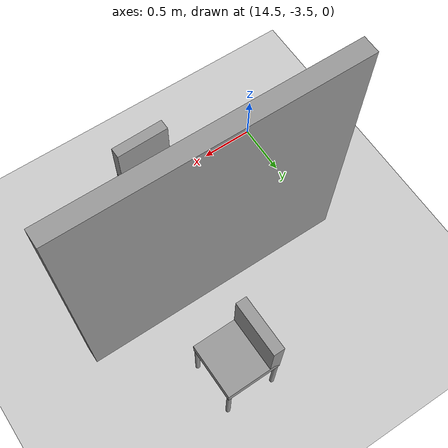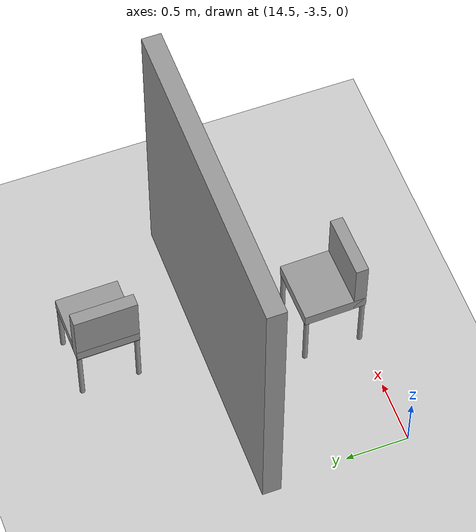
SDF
<sdf version="1.6">
 <world name="default">
  <model name="ground_plane">
   <static>1</static>
   <link name="link">
    <collision name="collision">
     <geometry><plane><normal>0 0 1</normal><size>100 100</size></plane></geometry>
     <surface>
      <contact><collide_bitmask>65535</collide_bitmask></contact>
      <friction><ode><mu>100</mu><mu2>50</mu2></ode></friction>
     </surface>
    </collision>
    <visual name="visual">
     <cast_shadows>0</cast_shadows>
     <geometry><plane><normal>0 0 1</normal><size>100 100</size></plane></geometry>
     <material>
      <script><uri>file://media/materials/scripts/gazebo.material</uri><name>Gazebo/Grey</name></script>
     </material>
    </visual>
   </link>
  </model>
  <model name="dunder_mifflin_scranton_full">
   <pose>4.5312 0.479645 0 0 -0 0</pose>
   <link name="Wall_41">
    <collision name="Wall_41_Collision">
     <geometry><box><size>2.5 0.15 2.5</size></box></geometry>
     <pose>0 0 1.25 0 -0 0</pose>
    </collision>
    <visual name="Wall_41_Visual">
     <pose>0 0 1.25 0 -0 0</pose>
     <geometry><box><size>2.5 0.15 2.5</size></box></geometry>
     <material>
      <script><uri>file://media/materials/scripts/gazebo.material</uri><name>Gazebo/Grey</name></script>
      <ambient>1 1 1 1</ambient>
     </material>
     <meta><layer>0</layer></meta>
    </visual>
    <pose>11.1549 -2.85065 0 0 -0 3.14159</pose>
   </link>
   <static>1</static>
  </model>
  <model name="chair_11">
   <link name="link_0">
    <inertial>
     <mass>1</mass>
     <inertia><ixx>0.145833</ixx><ixy>0</ixy><ixz>0</ixz><iyy>0.145833</iyy><iyz>0</iyz><izz>0.125</izz></inertia>
    </inertial>
    <pose>-0.23 -0.19667 -0.280001 0 -0 0</pose>
    <visual name="visual">
     <geometry><cylinder><radius>0.02</radius><length>0.5</length></cylinder></geometry>
     <material>
      <lighting>1</lighting>
      <script><uri>file://media/materials/scripts/gazebo.material</uri><name>Gazebo/Grey</name></script>
      <shader type="vertex"><normal_map>__default__</normal_map></shader>
      <ambient>0.3 0.3 0.3 1</ambient>
      <diffuse>0.7 0.7 0.7 1</diffuse>
      <specular>0.01 0.01 0.01 1</specular>
      <emissive>0 0 0 1</emissive>
     </material>
    </visual>
    <collision name="collision">
     <geometry><cylinder><radius>0.02</radius><length>0.5</length></cylinder></geometry>
     <surface>
      <friction>
       <ode><mu>1</mu><mu2>1</mu2><fdir1>0 0 0</fdir1><slip1>0</slip1><slip2>0</slip2></ode>
       <torsional>
        <coefficient>1</coefficient>
        <patch_radius>0</patch_radius>
        <surface_radius>0</surface_radius>
        <use_patch_radius>1</use_patch_radius>
        <ode><slip>0</slip></ode>
       </torsional>
      </friction>
      <bounce><restitution_coefficient>0</restitution_coefficient><threshold>1e+06</threshold></bounce>
      <contact>
       <collide_without_contact>0</collide_without_contact>
       <collide_without_contact_bitmask>1</collide_without_contact_bitmask>
       <collide_bitmask>1</collide_bitmask>
       <ode>
        <soft_cfm>0</soft_cfm>
        <soft_erp>0.2</soft_erp>
        <kp>1e+13</kp>
        <kd>1</kd>
        <max_vel>0.01</max_vel>
        <min_depth>0</min_depth>
       </ode>
       <bullet>
        <split_impulse>1</split_impulse>
        <split_impulse_penetration_threshold>-0.01</split_impulse_penetration_threshold>
        <soft_cfm>0</soft_cfm>
        <soft_erp>0.2</soft_erp>
        <kp>1e+13</kp>
        <kd>1</kd>
       </bullet>
      </contact>
     </surface>
    </collision>
   </link>
   <link name="link_0_clone">
    <inertial>
     <mass>1</mass>
     <inertia><ixx>0.145833</ixx><ixy>0</ixy><ixz>0</ixz><iyy>0.145833</iyy><iyz>0</iyz><izz>0.125</izz></inertia>
    </inertial>
    <pose>0.23 -0.19667 -0.280001 0 -0 0</pose>
    <visual name="visual">
     <geometry><cylinder><radius>0.02</radius><length>0.5</length></cylinder></geometry>
     <material>
      <lighting>1</lighting>
      <script><uri>file://media/materials/scripts/gazebo.material</uri><name>Gazebo/Grey</name></script>
      <shader type="vertex"><normal_map>__default__</normal_map></shader>
      <ambient>0.3 0.3 0.3 1</ambient>
      <diffuse>0.7 0.7 0.7 1</diffuse>
      <specular>0.01 0.01 0.01 1</specular>
      <emissive>0 0 0 1</emissive>
     </material>
    </visual>
    <collision name="collision">
     <geometry><cylinder><radius>0.02</radius><length>0.5</length></cylinder></geometry>
     <surface>
      <friction>
       <ode><mu>1</mu><mu2>1</mu2><fdir1>0 0 0</fdir1><slip1>0</slip1><slip2>0</slip2></ode>
       <torsional>
        <coefficient>1</coefficient>
        <patch_radius>0</patch_radius>
        <surface_radius>0</surface_radius>
        <use_patch_radius>1</use_patch_radius>
        <ode><slip>0</slip></ode>
       </torsional>
      </friction>
      <bounce><restitution_coefficient>0</restitution_coefficient><threshold>1e+06</threshold></bounce>
      <contact>
       <collide_without_contact>0</collide_without_contact>
       <collide_without_contact_bitmask>1</collide_without_contact_bitmask>
       <collide_bitmask>1</collide_bitmask>
       <ode>
        <soft_cfm>0</soft_cfm>
        <soft_erp>0.2</soft_erp>
        <kp>1e+13</kp>
        <kd>1</kd>
        <max_vel>0.01</max_vel>
        <min_depth>0</min_depth>
       </ode>
       <bullet>
        <split_impulse>1</split_impulse>
        <split_impulse_penetration_threshold>-0.01</split_impulse_penetration_threshold>
        <soft_cfm>0</soft_cfm>
        <soft_erp>0.2</soft_erp>
        <kp>1e+13</kp>
        <kd>1</kd>
       </bullet>
      </contact>
     </surface>
    </collision>
   </link>
   <link name="link_0_clone_0">
    <inertial>
     <mass>1</mass>
     <inertia><ixx>0.145833</ixx><ixy>0</ixy><ixz>0</ixz><iyy>0.145833</iyy><iyz>0</iyz><izz>0.125</izz></inertia>
    </inertial>
    <pose>0.23 0.26333 -0.280001 0 -0 0</pose>
    <visual name="visual">
     <geometry><cylinder><radius>0.02</radius><length>0.5</length></cylinder></geometry>
     <material>
      <lighting>1</lighting>
      <script><uri>file://media/materials/scripts/gazebo.material</uri><name>Gazebo/Grey</name></script>
      <shader type="vertex"><normal_map>__default__</normal_map></shader>
      <ambient>0.3 0.3 0.3 1</ambient>
      <diffuse>0.7 0.7 0.7 1</diffuse>
      <specular>0.01 0.01 0.01 1</specular>
      <emissive>0 0 0 1</emissive>
     </material>
    </visual>
    <collision name="collision">
     <geometry><cylinder><radius>0.02</radius><length>0.5</length></cylinder></geometry>
     <surface>
      <friction>
       <ode><mu>1</mu><mu2>1</mu2><fdir1>0 0 0</fdir1><slip1>0</slip1><slip2>0</slip2></ode>
       <torsional>
        <coefficient>1</coefficient>
        <patch_radius>0</patch_radius>
        <surface_radius>0</surface_radius>
        <use_patch_radius>1</use_patch_radius>
        <ode><slip>0</slip></ode>
       </torsional>
      </friction>
      <bounce><restitution_coefficient>0</restitution_coefficient><threshold>1e+06</threshold></bounce>
      <contact>
       <collide_without_contact>0</collide_without_contact>
       <collide_without_contact_bitmask>1</collide_without_contact_bitmask>
       <collide_bitmask>1</collide_bitmask>
       <ode>
        <soft_cfm>0</soft_cfm>
        <soft_erp>0.2</soft_erp>
        <kp>1e+13</kp>
        <kd>1</kd>
        <max_vel>0.01</max_vel>
        <min_depth>0</min_depth>
       </ode>
       <bullet>
        <split_impulse>1</split_impulse>
        <split_impulse_penetration_threshold>-0.01</split_impulse_penetration_threshold>
        <soft_cfm>0</soft_cfm>
        <soft_erp>0.2</soft_erp>
        <kp>1e+13</kp>
        <kd>1</kd>
       </bullet>
      </contact>
     </surface>
    </collision>
   </link>
   <link name="link_0_clone_1">
    <inertial>
     <mass>1</mass>
     <inertia><ixx>0.145833</ixx><ixy>0</ixy><ixz>0</ixz><iyy>0.145833</iyy><iyz>0</iyz><izz>0.125</izz></inertia>
    </inertial>
    <pose>-0.23 0.26333 -0.280001 0 -0 0</pose>
    <visual name="visual">
     <geometry><cylinder><radius>0.02</radius><length>0.5</length></cylinder></geometry>
     <material>
      <lighting>1</lighting>
      <script><uri>file://media/materials/scripts/gazebo.material</uri><name>Gazebo/Grey</name></script>
      <shader type="vertex"><normal_map>__default__</normal_map></shader>
      <ambient>0.3 0.3 0.3 1</ambient>
      <diffuse>0.7 0.7 0.7 1</diffuse>
      <specular>0.01 0.01 0.01 1</specular>
      <emissive>0 0 0 1</emissive>
     </material>
    </visual>
    <collision name="collision">
     <geometry><cylinder><radius>0.02</radius><length>0.5</length></cylinder></geometry>
     <surface>
      <friction>
       <ode><mu>1</mu><mu2>1</mu2><fdir1>0 0 0</fdir1><slip1>0</slip1><slip2>0</slip2></ode>
       <torsional>
        <coefficient>1</coefficient>
        <patch_radius>0</patch_radius>
        <surface_radius>0</surface_radius>
        <use_patch_radius>1</use_patch_radius>
        <ode><slip>0</slip></ode>
       </torsional>
      </friction>
      <bounce><restitution_coefficient>0</restitution_coefficient><threshold>1e+06</threshold></bounce>
      <contact>
       <collide_without_contact>0</collide_without_contact>
       <collide_without_contact_bitmask>1</collide_without_contact_bitmask>
       <collide_bitmask>1</collide_bitmask>
       <ode>
        <soft_cfm>0</soft_cfm>
        <soft_erp>0.2</soft_erp>
        <kp>1e+13</kp>
        <kd>1</kd>
        <max_vel>0.01</max_vel>
        <min_depth>0</min_depth>
       </ode>
       <bullet>
        <split_impulse>1</split_impulse>
        <split_impulse_penetration_threshold>-0.01</split_impulse_penetration_threshold>
        <soft_cfm>0</soft_cfm>
        <soft_erp>0.2</soft_erp>
        <kp>1e+13</kp>
        <kd>1</kd>
       </bullet>
      </contact>
     </surface>
    </collision>
   </link>
   <link name="link_2">
    <inertial>
     <mass>1</mass>
     <inertia>
      <ixx>0.166667</ixx>
      <ixy>0</ixy>
      <ixz>0</ixz>
      <iyy>0.166667</iyy>
      <iyz>0</iyz>
      <izz>0.166667</izz>
     </inertia>
    </inertial>
    <pose>0 0.03333 0.019999 0 -0 0</pose>
    <visual name="visual">
     <geometry><box><size>0.5 0.5 0.1</size></box></geometry>
     <material>
      <lighting>1</lighting>
      <script><uri>file://media/materials/scripts/gazebo.material</uri><name>Gazebo/Grey</name></script>
      <shader type="vertex"><normal_map>__default__</normal_map></shader>
      <ambient>0.3 0.3 0.3 1</ambient>
      <diffuse>0.7 0.7 0.7 1</diffuse>
      <specular>0.01 0.01 0.01 1</specular>
      <emissive>0 0 0 1</emissive>
     </material>
    </visual>
    <collision name="collision">
     <geometry><box><size>0.5 0.5 0.1</size></box></geometry>
     <surface>
      <friction>
       <ode><mu>1</mu><mu2>1</mu2><fdir1>0 0 0</fdir1><slip1>0</slip1><slip2>0</slip2></ode>
       <torsional>
        <coefficient>1</coefficient>
        <patch_radius>0</patch_radius>
        <surface_radius>0</surface_radius>
        <use_patch_radius>1</use_patch_radius>
        <ode><slip>0</slip></ode>
       </torsional>
      </friction>
      <bounce><restitution_coefficient>0</restitution_coefficient><threshold>1e+06</threshold></bounce>
      <contact>
       <collide_without_contact>0</collide_without_contact>
       <collide_without_contact_bitmask>1</collide_without_contact_bitmask>
       <collide_bitmask>1</collide_bitmask>
       <ode>
        <soft_cfm>0</soft_cfm>
        <soft_erp>0.2</soft_erp>
        <kp>1e+13</kp>
        <kd>1</kd>
        <max_vel>0.01</max_vel>
        <min_depth>0</min_depth>
       </ode>
       <bullet>
        <split_impulse>1</split_impulse>
        <split_impulse_penetration_threshold>-0.01</split_impulse_penetration_threshold>
        <soft_cfm>0</soft_cfm>
        <soft_erp>0.2</soft_erp>
        <kp>1e+13</kp>
        <kd>1</kd>
       </bullet>
      </contact>
     </surface>
    </collision>
   </link>
   <link name="link_2_clone">
    <inertial>
     <mass>1</mass>
     <inertia>
      <ixx>0.166667</ixx>
      <ixy>0</ixy>
      <ixz>0</ixz>
      <iyy>0.166667</iyy>
      <iyz>0</iyz>
      <izz>0.166667</izz>
     </inertia>
    </inertial>
    <pose>0 -0.166646 0.220004 1.5707 -0 0</pose>
    <visual name="visual">
     <geometry><box><size>0.5 0.5 0.1</size></box></geometry>
     <material>
      <lighting>1</lighting>
      <script><uri>file://media/materials/scripts/gazebo.material</uri><name>Gazebo/Grey</name></script>
      <shader type="vertex"><normal_map>__default__</normal_map></shader>
      <ambient>0.3 0.3 0.3 1</ambient>
      <diffuse>0.7 0.7 0.7 1</diffuse>
      <specular>0.01 0.01 0.01 1</specular>
      <emissive>0 0 0 1</emissive>
     </material>
    </visual>
    <collision name="collision">
     <geometry><box><size>0.5 0.5 0.1</size></box></geometry>
     <surface>
      <friction>
       <ode><mu>1</mu><mu2>1</mu2><fdir1>0 0 0</fdir1><slip1>0</slip1><slip2>0</slip2></ode>
       <torsional>
        <coefficient>1</coefficient>
        <patch_radius>0</patch_radius>
        <surface_radius>0</surface_radius>
        <use_patch_radius>1</use_patch_radius>
        <ode><slip>0</slip></ode>
       </torsional>
      </friction>
      <bounce><restitution_coefficient>0</restitution_coefficient><threshold>1e+06</threshold></bounce>
      <contact>
       <collide_without_contact>0</collide_without_contact>
       <collide_without_contact_bitmask>1</collide_without_contact_bitmask>
       <collide_bitmask>1</collide_bitmask>
       <ode>
        <soft_cfm>0</soft_cfm>
        <soft_erp>0.2</soft_erp>
        <kp>1e+13</kp>
        <kd>1</kd>
        <max_vel>0.01</max_vel>
        <min_depth>0</min_depth>
       </ode>
       <bullet>
        <split_impulse>1</split_impulse>
        <split_impulse_penetration_threshold>-0.01</split_impulse_penetration_threshold>
        <soft_cfm>0</soft_cfm>
        <soft_erp>0.2</soft_erp>
        <kp>1e+13</kp>
        <kd>1</kd>
       </bullet>
      </contact>
     </surface>
    </collision>
   </link>
   <joint name="link_0_clone_JOINT_2" type="fixed">
    <parent>link_2</parent>
    <child>link_0_clone</child>
    <physics>
     <ode><limit><cfm>0</cfm><erp>0.2</erp></limit><suspension><cfm>0</cfm><erp>0.2</erp></suspension></ode>
    </physics>
   </joint>
   <joint name="link_2_JOINT_1" type="fixed">
    <parent>link_2</parent>
    <child>link_0</child>
    <physics>
     <ode><limit><cfm>0</cfm><erp>0.2</erp></limit><suspension><cfm>0</cfm><erp>0.2</erp></suspension></ode>
    </physics>
   </joint>
   <joint name="link_2_JOINT_3" type="fixed">
    <parent>link_2</parent>
    <child>link_0_clone_0</child>
    <physics>
     <ode><limit><cfm>0</cfm><erp>0.2</erp></limit><suspension><cfm>0</cfm><erp>0.2</erp></suspension></ode>
    </physics>
   </joint>
   <joint name="link_2_JOINT_4" type="fixed">
    <parent>link_2</parent>
    <child>link_0_clone_1</child>
    <physics>
     <ode><limit><cfm>0</cfm><erp>0.2</erp></limit><suspension><cfm>0</cfm><erp>0.2</erp></suspension></ode>
    </physics>
   </joint>
   <joint name="link_2_JOINT_5" type="fixed">
    <parent>link_2</parent>
    <child>link_2_clone</child>
    <physics>
     <ode><limit><cfm>0</cfm><erp>0.2</erp></limit><suspension><cfm>0</cfm><erp>0.2</erp></suspension></ode>
    </physics>
   </joint>
   <static>0</static>
   <pose>15.6823 -3.29128 0.529996 0 -0 0.019875</pose>
  </model>
  <model name="chair_16">
   <link name="link_0">
    <inertial>
     <mass>1</mass>
     <inertia><ixx>0.145833</ixx><ixy>0</ixy><ixz>0</ixz><iyy>0.145833</iyy><iyz>0</iyz><izz>0.125</izz></inertia>
    </inertial>
    <pose>-0.23 -0.19667 -0.280001 0 -0 0</pose>
    <visual name="visual">
     <geometry><cylinder><radius>0.02</radius><length>0.5</length></cylinder></geometry>
     <material>
      <lighting>1</lighting>
      <script><uri>file://media/materials/scripts/gazebo.material</uri><name>Gazebo/Grey</name></script>
      <shader type="vertex"><normal_map>__default__</normal_map></shader>
      <ambient>0.3 0.3 0.3 1</ambient>
      <diffuse>0.7 0.7 0.7 1</diffuse>
      <specular>0.01 0.01 0.01 1</specular>
      <emissive>0 0 0 1</emissive>
     </material>
    </visual>
    <collision name="collision">
     <geometry><cylinder><radius>0.02</radius><length>0.5</length></cylinder></geometry>
     <surface>
      <friction>
       <ode><mu>1</mu><mu2>1</mu2><fdir1>0 0 0</fdir1><slip1>0</slip1><slip2>0</slip2></ode>
       <torsional>
        <coefficient>1</coefficient>
        <patch_radius>0</patch_radius>
        <surface_radius>0</surface_radius>
        <use_patch_radius>1</use_patch_radius>
        <ode><slip>0</slip></ode>
       </torsional>
      </friction>
      <bounce><restitution_coefficient>0</restitution_coefficient><threshold>1e+06</threshold></bounce>
      <contact>
       <collide_without_contact>0</collide_without_contact>
       <collide_without_contact_bitmask>1</collide_without_contact_bitmask>
       <collide_bitmask>1</collide_bitmask>
       <ode>
        <soft_cfm>0</soft_cfm>
        <soft_erp>0.2</soft_erp>
        <kp>1e+13</kp>
        <kd>1</kd>
        <max_vel>0.01</max_vel>
        <min_depth>0</min_depth>
       </ode>
       <bullet>
        <split_impulse>1</split_impulse>
        <split_impulse_penetration_threshold>-0.01</split_impulse_penetration_threshold>
        <soft_cfm>0</soft_cfm>
        <soft_erp>0.2</soft_erp>
        <kp>1e+13</kp>
        <kd>1</kd>
       </bullet>
      </contact>
     </surface>
    </collision>
   </link>
   <link name="link_0_clone">
    <inertial>
     <mass>1</mass>
     <inertia><ixx>0.145833</ixx><ixy>0</ixy><ixz>0</ixz><iyy>0.145833</iyy><iyz>0</iyz><izz>0.125</izz></inertia>
    </inertial>
    <pose>0.23 -0.19667 -0.280001 0 -0 0</pose>
    <visual name="visual">
     <geometry><cylinder><radius>0.02</radius><length>0.5</length></cylinder></geometry>
     <material>
      <lighting>1</lighting>
      <script><uri>file://media/materials/scripts/gazebo.material</uri><name>Gazebo/Grey</name></script>
      <shader type="vertex"><normal_map>__default__</normal_map></shader>
      <ambient>0.3 0.3 0.3 1</ambient>
      <diffuse>0.7 0.7 0.7 1</diffuse>
      <specular>0.01 0.01 0.01 1</specular>
      <emissive>0 0 0 1</emissive>
     </material>
    </visual>
    <collision name="collision">
     <geometry><cylinder><radius>0.02</radius><length>0.5</length></cylinder></geometry>
     <surface>
      <friction>
       <ode><mu>1</mu><mu2>1</mu2><fdir1>0 0 0</fdir1><slip1>0</slip1><slip2>0</slip2></ode>
       <torsional>
        <coefficient>1</coefficient>
        <patch_radius>0</patch_radius>
        <surface_radius>0</surface_radius>
        <use_patch_radius>1</use_patch_radius>
        <ode><slip>0</slip></ode>
       </torsional>
      </friction>
      <bounce><restitution_coefficient>0</restitution_coefficient><threshold>1e+06</threshold></bounce>
      <contact>
       <collide_without_contact>0</collide_without_contact>
       <collide_without_contact_bitmask>1</collide_without_contact_bitmask>
       <collide_bitmask>1</collide_bitmask>
       <ode>
        <soft_cfm>0</soft_cfm>
        <soft_erp>0.2</soft_erp>
        <kp>1e+13</kp>
        <kd>1</kd>
        <max_vel>0.01</max_vel>
        <min_depth>0</min_depth>
       </ode>
       <bullet>
        <split_impulse>1</split_impulse>
        <split_impulse_penetration_threshold>-0.01</split_impulse_penetration_threshold>
        <soft_cfm>0</soft_cfm>
        <soft_erp>0.2</soft_erp>
        <kp>1e+13</kp>
        <kd>1</kd>
       </bullet>
      </contact>
     </surface>
    </collision>
   </link>
   <link name="link_0_clone_0">
    <inertial>
     <mass>1</mass>
     <inertia><ixx>0.145833</ixx><ixy>0</ixy><ixz>0</ixz><iyy>0.145833</iyy><iyz>0</iyz><izz>0.125</izz></inertia>
    </inertial>
    <pose>0.23 0.26333 -0.280001 0 -0 0</pose>
    <visual name="visual">
     <geometry><cylinder><radius>0.02</radius><length>0.5</length></cylinder></geometry>
     <material>
      <lighting>1</lighting>
      <script><uri>file://media/materials/scripts/gazebo.material</uri><name>Gazebo/Grey</name></script>
      <shader type="vertex"><normal_map>__default__</normal_map></shader>
      <ambient>0.3 0.3 0.3 1</ambient>
      <diffuse>0.7 0.7 0.7 1</diffuse>
      <specular>0.01 0.01 0.01 1</specular>
      <emissive>0 0 0 1</emissive>
     </material>
    </visual>
    <collision name="collision">
     <geometry><cylinder><radius>0.02</radius><length>0.5</length></cylinder></geometry>
     <surface>
      <friction>
       <ode><mu>1</mu><mu2>1</mu2><fdir1>0 0 0</fdir1><slip1>0</slip1><slip2>0</slip2></ode>
       <torsional>
        <coefficient>1</coefficient>
        <patch_radius>0</patch_radius>
        <surface_radius>0</surface_radius>
        <use_patch_radius>1</use_patch_radius>
        <ode><slip>0</slip></ode>
       </torsional>
      </friction>
      <bounce><restitution_coefficient>0</restitution_coefficient><threshold>1e+06</threshold></bounce>
      <contact>
       <collide_without_contact>0</collide_without_contact>
       <collide_without_contact_bitmask>1</collide_without_contact_bitmask>
       <collide_bitmask>1</collide_bitmask>
       <ode>
        <soft_cfm>0</soft_cfm>
        <soft_erp>0.2</soft_erp>
        <kp>1e+13</kp>
        <kd>1</kd>
        <max_vel>0.01</max_vel>
        <min_depth>0</min_depth>
       </ode>
       <bullet>
        <split_impulse>1</split_impulse>
        <split_impulse_penetration_threshold>-0.01</split_impulse_penetration_threshold>
        <soft_cfm>0</soft_cfm>
        <soft_erp>0.2</soft_erp>
        <kp>1e+13</kp>
        <kd>1</kd>
       </bullet>
      </contact>
     </surface>
    </collision>
   </link>
   <link name="link_0_clone_1">
    <inertial>
     <mass>1</mass>
     <inertia><ixx>0.145833</ixx><ixy>0</ixy><ixz>0</ixz><iyy>0.145833</iyy><iyz>0</iyz><izz>0.125</izz></inertia>
    </inertial>
    <pose>-0.23 0.26333 -0.280001 0 -0 0</pose>
    <visual name="visual">
     <geometry><cylinder><radius>0.02</radius><length>0.5</length></cylinder></geometry>
     <material>
      <lighting>1</lighting>
      <script><uri>file://media/materials/scripts/gazebo.material</uri><name>Gazebo/Grey</name></script>
      <shader type="vertex"><normal_map>__default__</normal_map></shader>
      <ambient>0.3 0.3 0.3 1</ambient>
      <diffuse>0.7 0.7 0.7 1</diffuse>
      <specular>0.01 0.01 0.01 1</specular>
      <emissive>0 0 0 1</emissive>
     </material>
    </visual>
    <collision name="collision">
     <geometry><cylinder><radius>0.02</radius><length>0.5</length></cylinder></geometry>
     <surface>
      <friction>
       <ode><mu>1</mu><mu2>1</mu2><fdir1>0 0 0</fdir1><slip1>0</slip1><slip2>0</slip2></ode>
       <torsional>
        <coefficient>1</coefficient>
        <patch_radius>0</patch_radius>
        <surface_radius>0</surface_radius>
        <use_patch_radius>1</use_patch_radius>
        <ode><slip>0</slip></ode>
       </torsional>
      </friction>
      <bounce><restitution_coefficient>0</restitution_coefficient><threshold>1e+06</threshold></bounce>
      <contact>
       <collide_without_contact>0</collide_without_contact>
       <collide_without_contact_bitmask>1</collide_without_contact_bitmask>
       <collide_bitmask>1</collide_bitmask>
       <ode>
        <soft_cfm>0</soft_cfm>
        <soft_erp>0.2</soft_erp>
        <kp>1e+13</kp>
        <kd>1</kd>
        <max_vel>0.01</max_vel>
        <min_depth>0</min_depth>
       </ode>
       <bullet>
        <split_impulse>1</split_impulse>
        <split_impulse_penetration_threshold>-0.01</split_impulse_penetration_threshold>
        <soft_cfm>0</soft_cfm>
        <soft_erp>0.2</soft_erp>
        <kp>1e+13</kp>
        <kd>1</kd>
       </bullet>
      </contact>
     </surface>
    </collision>
   </link>
   <link name="link_2">
    <inertial>
     <mass>1</mass>
     <inertia>
      <ixx>0.166667</ixx>
      <ixy>0</ixy>
      <ixz>0</ixz>
      <iyy>0.166667</iyy>
      <iyz>0</iyz>
      <izz>0.166667</izz>
     </inertia>
    </inertial>
    <pose>0 0.03333 0.019999 0 -0 0</pose>
    <visual name="visual">
     <geometry><box><size>0.5 0.5 0.1</size></box></geometry>
     <material>
      <lighting>1</lighting>
      <script><uri>file://media/materials/scripts/gazebo.material</uri><name>Gazebo/Grey</name></script>
      <shader type="vertex"><normal_map>__default__</normal_map></shader>
      <ambient>0.3 0.3 0.3 1</ambient>
      <diffuse>0.7 0.7 0.7 1</diffuse>
      <specular>0.01 0.01 0.01 1</specular>
      <emissive>0 0 0 1</emissive>
     </material>
    </visual>
    <collision name="collision">
     <geometry><box><size>0.5 0.5 0.1</size></box></geometry>
     <surface>
      <friction>
       <ode><mu>1</mu><mu2>1</mu2><fdir1>0 0 0</fdir1><slip1>0</slip1><slip2>0</slip2></ode>
       <torsional>
        <coefficient>1</coefficient>
        <patch_radius>0</patch_radius>
        <surface_radius>0</surface_radius>
        <use_patch_radius>1</use_patch_radius>
        <ode><slip>0</slip></ode>
       </torsional>
      </friction>
      <bounce><restitution_coefficient>0</restitution_coefficient><threshold>1e+06</threshold></bounce>
      <contact>
       <collide_without_contact>0</collide_without_contact>
       <collide_without_contact_bitmask>1</collide_without_contact_bitmask>
       <collide_bitmask>1</collide_bitmask>
       <ode>
        <soft_cfm>0</soft_cfm>
        <soft_erp>0.2</soft_erp>
        <kp>1e+13</kp>
        <kd>1</kd>
        <max_vel>0.01</max_vel>
        <min_depth>0</min_depth>
       </ode>
       <bullet>
        <split_impulse>1</split_impulse>
        <split_impulse_penetration_threshold>-0.01</split_impulse_penetration_threshold>
        <soft_cfm>0</soft_cfm>
        <soft_erp>0.2</soft_erp>
        <kp>1e+13</kp>
        <kd>1</kd>
       </bullet>
      </contact>
     </surface>
    </collision>
   </link>
   <link name="link_2_clone">
    <inertial>
     <mass>1</mass>
     <inertia>
      <ixx>0.166667</ixx>
      <ixy>0</ixy>
      <ixz>0</ixz>
      <iyy>0.166667</iyy>
      <iyz>0</iyz>
      <izz>0.166667</izz>
     </inertia>
    </inertial>
    <pose>0 -0.166646 0.220004 1.5707 -0 0</pose>
    <visual name="visual">
     <geometry><box><size>0.5 0.5 0.1</size></box></geometry>
     <material>
      <lighting>1</lighting>
      <script><uri>file://media/materials/scripts/gazebo.material</uri><name>Gazebo/Grey</name></script>
      <shader type="vertex"><normal_map>__default__</normal_map></shader>
      <ambient>0.3 0.3 0.3 1</ambient>
      <diffuse>0.7 0.7 0.7 1</diffuse>
      <specular>0.01 0.01 0.01 1</specular>
      <emissive>0 0 0 1</emissive>
     </material>
    </visual>
    <collision name="collision">
     <geometry><box><size>0.5 0.5 0.1</size></box></geometry>
     <surface>
      <friction>
       <ode><mu>1</mu><mu2>1</mu2><fdir1>0 0 0</fdir1><slip1>0</slip1><slip2>0</slip2></ode>
       <torsional>
        <coefficient>1</coefficient>
        <patch_radius>0</patch_radius>
        <surface_radius>0</surface_radius>
        <use_patch_radius>1</use_patch_radius>
        <ode><slip>0</slip></ode>
       </torsional>
      </friction>
      <bounce><restitution_coefficient>0</restitution_coefficient><threshold>1e+06</threshold></bounce>
      <contact>
       <collide_without_contact>0</collide_without_contact>
       <collide_without_contact_bitmask>1</collide_without_contact_bitmask>
       <collide_bitmask>1</collide_bitmask>
       <ode>
        <soft_cfm>0</soft_cfm>
        <soft_erp>0.2</soft_erp>
        <kp>1e+13</kp>
        <kd>1</kd>
        <max_vel>0.01</max_vel>
        <min_depth>0</min_depth>
       </ode>
       <bullet>
        <split_impulse>1</split_impulse>
        <split_impulse_penetration_threshold>-0.01</split_impulse_penetration_threshold>
        <soft_cfm>0</soft_cfm>
        <soft_erp>0.2</soft_erp>
        <kp>1e+13</kp>
        <kd>1</kd>
       </bullet>
      </contact>
     </surface>
    </collision>
   </link>
   <joint name="link_0_clone_JOINT_2" type="fixed">
    <parent>link_2</parent>
    <child>link_0_clone</child>
    <physics>
     <ode><limit><cfm>0</cfm><erp>0.2</erp></limit><suspension><cfm>0</cfm><erp>0.2</erp></suspension></ode>
    </physics>
   </joint>
   <joint name="link_2_JOINT_1" type="fixed">
    <parent>link_2</parent>
    <child>link_0</child>
    <physics>
     <ode><limit><cfm>0</cfm><erp>0.2</erp></limit><suspension><cfm>0</cfm><erp>0.2</erp></suspension></ode>
    </physics>
   </joint>
   <joint name="link_2_JOINT_3" type="fixed">
    <parent>link_2</parent>
    <child>link_0_clone_0</child>
    <physics>
     <ode><limit><cfm>0</cfm><erp>0.2</erp></limit><suspension><cfm>0</cfm><erp>0.2</erp></suspension></ode>
    </physics>
   </joint>
   <joint name="link_2_JOINT_4" type="fixed">
    <parent>link_2</parent>
    <child>link_0_clone_1</child>
    <physics>
     <ode><limit><cfm>0</cfm><erp>0.2</erp></limit><suspension><cfm>0</cfm><erp>0.2</erp></suspension></ode>
    </physics>
   </joint>
   <joint name="link_2_JOINT_5" type="fixed">
    <parent>link_2</parent>
    <child>link_2_clone</child>
    <physics>
     <ode><limit><cfm>0</cfm><erp>0.2</erp></limit><suspension><cfm>0</cfm><erp>0.2</erp></suspension></ode>
    </physics>
   </joint>
   <static>0</static>
   <pose>15.9543 -1.54899 0.529992 0 0 -1.55947</pose>
  </model>
 </world>
</sdf>
